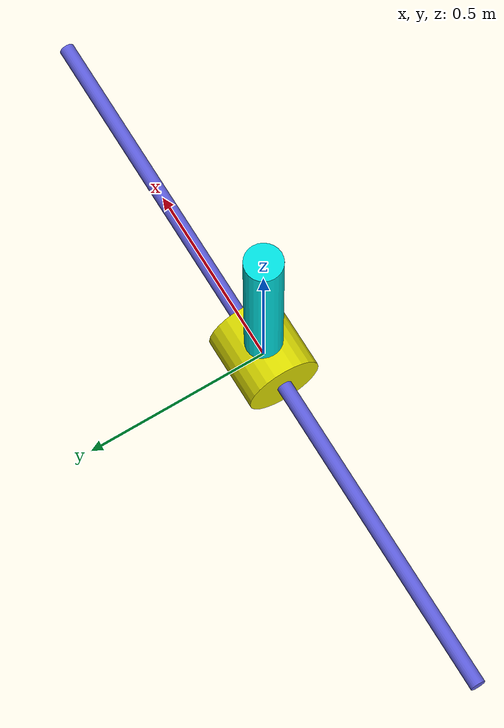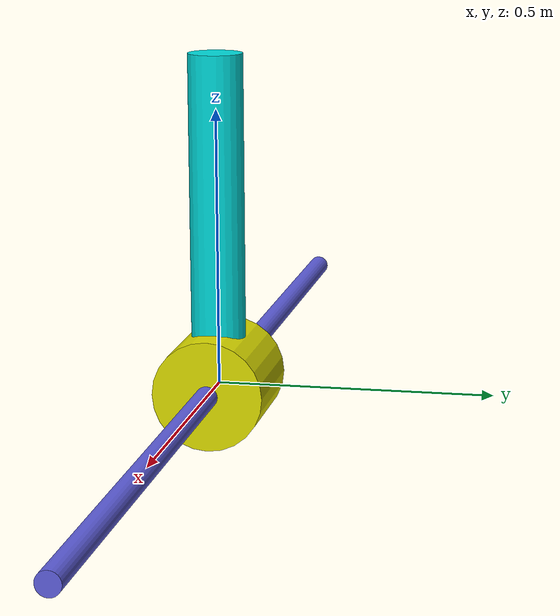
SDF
<?xml version="1.0"?>
<sdf version='1.11'>
  <model name='inverted_pendulum'>
    <joint name='world_to_rail' type='fixed'>
      <pose relative_to='__model__'>0 0 0 0 0 0</pose>
      <parent>world</parent>
      <child>rail</child>
    </joint>
    <link name='rail'>
      <pose relative_to='world_to_rail'>0 0 0 0 0 0</pose>
      <inertial>
        <pose>0 0 0 0 0 0</pose>
        <mass>0.0001</mass>
        <inertia>
          <ixx>9.9999999999999995e-07</ixx>
          <ixy>0</ixy>
          <ixz>0</ixz>
          <iyy>9.9999999999999995e-07</iyy>
          <iyz>0</iyz>
          <izz>9.9999999999999995e-07</izz>
        </inertia>
      </inertial>
      <collision name='rail_collision'>
        <pose>0 0 0 0 1.5707963267948966 0</pose>
        <geometry>
          <cylinder>
            <length>2</length>
            <radius>0.02</radius>
          </cylinder>
        </geometry>
      </collision>
      <visual name='rail_visual'>
        <pose>0 0 0 0 1.5707963267948966 0</pose>
        <geometry>
          <cylinder>
            <length>2</length>
            <radius>0.02</radius>
          </cylinder>
        </geometry>
        <material>
          <diffuse>0.37500003 0.37500003 0.875 1</diffuse>
          <ambient>0.37500003 0.37500003 0.875 1</ambient>
        </material>
      </visual>
    </link>
    <joint name='slider' type='prismatic'>
      <pose relative_to='rail'>0 0 0 0 0 0</pose>
      <parent>rail</parent>
      <child>cart</child>
      <axis>
        <xyz>1 0 0</xyz>
        <limit>
          <lower>-1</lower>
          <upper>1</upper>
          <effort>100</effort>
          <velocity>10</velocity>
        </limit>
        <dynamics>
          <damping>1</damping>
          <friction>0</friction>
          <spring_reference>0</spring_reference>
          <spring_stiffness>0</spring_stiffness>
        </dynamics>
      </axis>
    </joint>
    <link name='cart'>
      <pose relative_to='slider'>0 0 0 0 0 0</pose>
      <inertial>
        <pose>0 0 0 0 0 0</pose>
        <mass>10.47198</mass>
        <inertia>
          <ixx>0.069809999999999997</ixx>
          <ixy>0</ixy>
          <ixz>0</ixz>
          <iyy>0.17452999999999999</iyy>
          <iyz>0</iyz>
          <izz>0.17452999999999999</izz>
        </inertia>
      </inertial>
      <collision name='cart_collision'>
        <pose>0 0 0 0 1.5707963267948966 0</pose>
        <geometry>
          <cylinder>
            <length>0.20000000000000001</length>
            <radius>0.10000000000000001</radius>
          </cylinder>
        </geometry>
      </collision>
      <visual name='cart_visual'>
        <pose>0 0 0 0 1.5707963267948966 0</pose>
        <geometry>
          <cylinder>
            <length>0.20000000000000001</length>
            <radius>0.10000000000000001</radius>
          </cylinder>
        </geometry>
        <material>
          <diffuse>0.875 0.875 0 1</diffuse>
          <ambient>0.875 0.875 0 1</ambient>
        </material>
      </visual>
    </link>
    <joint name='hinge' type='revolute'>
      <pose relative_to='cart'>0 0 0 0 0 0</pose>
      <parent>cart</parent>
      <child>pole</child>
      <axis>
        <xyz>0 1 0</xyz>
        <limit>
          <lower>-1.5708</lower>
          <upper>1.5708</upper>
          <effort>100</effort>
          <velocity>10</velocity>
        </limit>
        <dynamics>
          <damping>1</damping>
          <friction>0</friction>
          <spring_reference>0</spring_reference>
          <spring_stiffness>0</spring_stiffness>
        </dynamics>
      </axis>
    </joint>
    <link name='pole'>
      <pose relative_to='hinge'>0 0 0 0 0 0</pose>
      <inertial>
        <pose>0.00050000000000000001 0 0.29999999999999999 0 0 0</pose>
        <mass>5.0185899999999997</mass>
        <inertia>
          <ixx>0.20787</ixx>
          <ixy>0</ixy>
          <ixz>0</ixz>
          <iyy>0.20796000000000001</iyy>
          <iyz>0</iyz>
          <izz>0.0081300000000000001</izz>
        </inertia>
      </inertial>
      <collision name='pole_collision'>
        <pose>0.00050000000000000001 0 0.29999999999999999 0 0 0</pose>
        <geometry>
          <cylinder>
            <length>0.59999999999999998</length>
            <radius>0.049000000000000002</radius>
          </cylinder>
        </geometry>
      </collision>
      <visual name='pole_visual'>
        <pose>0.00050000000000000001 0 0.29999999999999999 0 0 0</pose>
        <geometry>
          <cylinder>
            <length>0.59999999999999998</length>
            <radius>0.049000000000000002</radius>
          </cylinder>
        </geometry>
        <material>
          <diffuse>0 0.875 0.875 1</diffuse>
          <ambient>0 0.875 0.875 1</ambient>
        </material>
      </visual>
    </link>

    <plugin
      filename="gz-sim-apply-joint-force-system"
      name="gz::sim::systems::ApplyJointForce">
      <joint_name>slider</joint_name>
    </plugin>

    <!-- Publish joint positions + velocities for the sync-gate plugin. -->
    <plugin
      filename="gz-sim-joint-state-publisher-system"
      name="gz::sim::systems::JointStatePublisher">
      <joint_name>slider</joint_name>
      <joint_name>hinge</joint_name>
    </plugin>
  </model>
</sdf>
